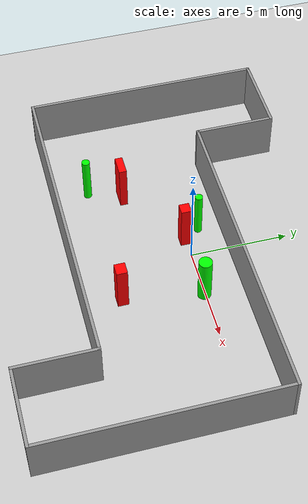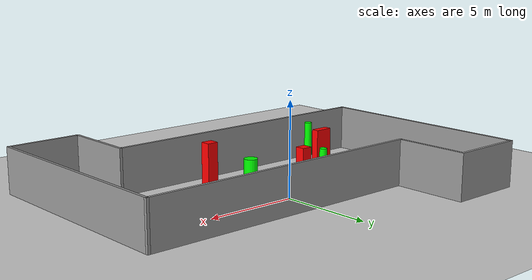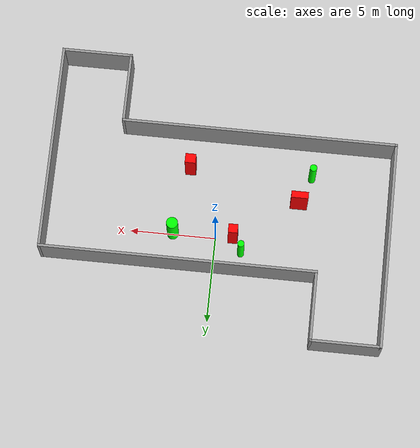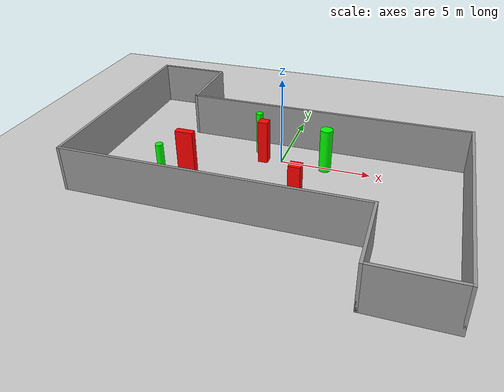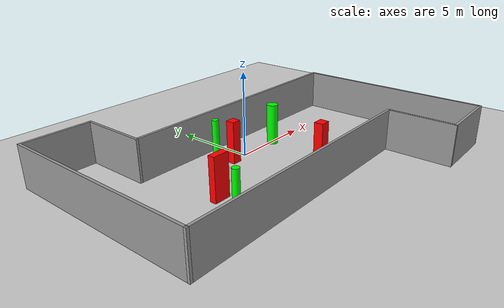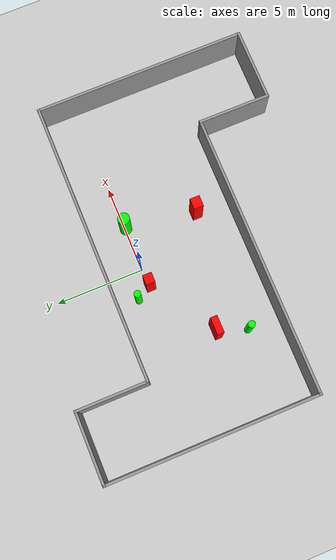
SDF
<sdf version="1.7">
 <world name="default">
  <light name="sun" type="directional">
   <pose>0 0 10 0 -0 0</pose>
   <diffuse>0.8 0.8 0.8 1</diffuse>
   <specular>0.2 0.2 0.2 1</specular>
   <attenuation>
    <range>1000</range>
    <constant>0.9</constant>
    <linear>0.01</linear>
    <quadratic>0.001</quadratic>
   </attenuation>
   <direction>-0.5 0.1 -0.9</direction>
   <spot><inner_angle>0</inner_angle><outer_angle>0</outer_angle><falloff>0</falloff></spot>
  </light>
  <model name="ground_plane">
   <static>1</static>
   <link name="link">
    <collision name="collision">
     <geometry><plane><normal>0 0 1</normal><size>100 100</size></plane></geometry>
     <surface>
      <contact><collide_bitmask>65535</collide_bitmask></contact>
      <friction><ode><mu>100</mu><mu2>50</mu2></ode></friction>
     </surface>
    </collision>
    <visual name="visual">
     <cast_shadows>0</cast_shadows>
     <geometry><plane><normal>0 0 1</normal><size>100 100</size></plane></geometry>
     <material>
      <script><uri>file://media/materials/scripts/gazebo.material</uri><name>Gazebo/Grey</name></script>
     </material>
    </visual>
   </link>
  </model>
  <gravity>0 0 -9.8</gravity>
  <magnetic_field>6e-06 2.3e-05 -4.2e-05</magnetic_field>
  <atmosphere type="adiabatic"/>
  <physics type="ode">
   <max_step_size>0.001</max_step_size>
   <real_time_factor>1</real_time_factor>
   <real_time_update_rate>1000</real_time_update_rate>
  </physics>
  <scene><ambient>0.4 0.4 0.4 1</ambient><background>0.7 0.7 0.7 1</background><shadows>1</shadows></scene>
  <spherical_coordinates>
   <surface_model>EARTH_WGS84</surface_model>
   <latitude_deg>0</latitude_deg>
   <longitude_deg>0</longitude_deg>
   <elevation>0</elevation>
   <heading_deg>0</heading_deg>
  </spherical_coordinates>
  <model name="my_base_walls">
   <link name="Wall_13">
    <collision name="Wall_13_Collision">
     <geometry><box><size>12.15 0.15 2.5</size></box></geometry>
     <pose>0 0 1.25 0 -0 0</pose>
    </collision>
    <visual name="Wall_13_Visual">
     <pose>0 0 1.25 0 -0 0</pose>
     <geometry><box><size>12.15 0.15 2.5</size></box></geometry>
     <material>
      <script><uri>file://media/materials/scripts/gazebo.material</uri><name>Gazebo/Grey</name></script>
      <ambient>1 1 1 1</ambient>
     </material>
     <meta><layer>0</layer></meta>
    </visual>
    <pose>10 -2 0 0 -0 1.5708</pose>
   </link>
   <link name="Wall_15">
    <collision name="Wall_15_Collision">
     <geometry><box><size>16.15 0.15 2.5</size></box></geometry>
     <pose>0 0 1.25 0 -0 0</pose>
    </collision>
    <visual name="Wall_15_Visual">
     <pose>0 0 1.25 0 -0 0</pose>
     <geometry><box><size>16.15 0.15 2.5</size></box></geometry>
     <material>
      <script><uri>file://media/materials/scripts/gazebo.material</uri><name>Gazebo/Grey</name></script>
      <ambient>1 1 1 1</ambient>
     </material>
     <meta><layer>0</layer></meta>
    </visual>
    <pose>2 4 0 0 -0 3.14159</pose>
   </link>
   <link name="Wall_17">
    <collision name="Wall_17_Collision">
     <geometry><box><size>4.15 0.15 2.5</size></box></geometry>
     <pose>0 0 1.25 0 -0 0</pose>
    </collision>
    <visual name="Wall_17_Visual">
     <pose>0 0 1.25 0 -0 0</pose>
     <geometry><box><size>4.15 0.15 2.5</size></box></geometry>
     <material>
      <script><uri>file://media/materials/scripts/gazebo.material</uri><name>Gazebo/Grey</name></script>
      <ambient>1 1 1 1</ambient>
     </material>
     <meta><layer>0</layer></meta>
    </visual>
    <pose>6 -6 0 0 -0 -1.5708</pose>
   </link>
   <link name="Wall_19">
    <collision name="Wall_19_Collision">
     <geometry><box><size>12.15 0.15 2.5</size></box></geometry>
     <pose>0 0 1.25 0 -0 0</pose>
    </collision>
    <visual name="Wall_19_Visual">
     <pose>0 0 1.25 0 -0 0</pose>
     <geometry><box><size>12.15 0.15 2.5</size></box></geometry>
     <material>
      <script><uri>file://media/materials/scripts/gazebo.material</uri><name>Gazebo/Grey</name></script>
      <ambient>1 1 1 1</ambient>
     </material>
     <meta><layer>0</layer></meta>
    </visual>
    <pose>-10 2 0 0 -0 1.5708</pose>
   </link>
   <link name="Wall_21">
    <collision name="Wall_21_Collision">
     <geometry><box><size>4.15 0.15 2.5</size></box></geometry>
     <pose>0 0 1.25 0 -0 0</pose>
    </collision>
    <visual name="Wall_21_Visual">
     <pose>0 0 1.25 0 -0 0</pose>
     <geometry><box><size>4.15 0.15 2.5</size></box></geometry>
     <material>
      <script><uri>file://media/materials/scripts/gazebo.material</uri><name>Gazebo/Grey</name></script>
      <ambient>1 1 1 1</ambient>
     </material>
     <meta><layer>0</layer></meta>
    </visual>
    <pose>-8 8 0 0 -0 0</pose>
   </link>
   <link name="Wall_23">
    <collision name="Wall_23_Collision">
     <geometry><box><size>4.15 0.15 2.5</size></box></geometry>
     <pose>0 0 1.25 0 -0 0</pose>
    </collision>
    <visual name="Wall_23_Visual">
     <pose>0 0 1.25 0 -0 0</pose>
     <geometry><box><size>4.15 0.15 2.5</size></box></geometry>
     <material>
      <script><uri>file://media/materials/scripts/gazebo.material</uri><name>Gazebo/Grey</name></script>
      <ambient>1 1 1 1</ambient>
     </material>
     <meta><layer>0</layer></meta>
    </visual>
    <pose>-6 6 0 0 -0 -1.5708</pose>
   </link>
   <link name="Wall_25">
    <collision name="Wall_25_Collision">
     <geometry><box><size>4.15 0.15 2.5</size></box></geometry>
     <pose>0 0 1.25 0 -0 0</pose>
    </collision>
    <visual name="Wall_25_Visual">
     <pose>0 0 1.25 0 -0 0</pose>
     <geometry><box><size>4.15 0.15 2.5</size></box></geometry>
     <material>
      <script><uri>file://media/materials/scripts/gazebo.material</uri><name>Gazebo/Grey</name></script>
      <ambient>1 1 1 1</ambient>
     </material>
     <meta><layer>0</layer></meta>
    </visual>
    <pose>8 -8 0 0 -0 0</pose>
   </link>
   <link name="Wall_9">
    <collision name="Wall_9_Collision">
     <geometry><box><size>16.15 0.15 2.5</size></box></geometry>
     <pose>0 0 1.25 0 -0 0</pose>
    </collision>
    <visual name="Wall_9_Visual">
     <pose>0 0 1.25 0 -0 0</pose>
     <geometry><box><size>16.15 0.15 2.5</size></box></geometry>
     <material>
      <script><uri>file://media/materials/scripts/gazebo.material</uri><name>Gazebo/Grey</name></script>
      <ambient>1 1 1 1</ambient>
     </material>
     <meta><layer>0</layer></meta>
    </visual>
    <pose>-2 -4 0 0 -0 3.14159</pose>
   </link>
   <static>1</static>
   <pose>-0 -2 0 0 -0 0</pose>
  </model>
  <model name="cylinder1">
   <static>1</static>
   <link name="link">
    <inertial>
     <mass>1</mass>
     <inertia><ixx>0.5</ixx><ixy>0</ixy><ixz>0</ixz><iyy>0.5</iyy><iyz>0</iyz><izz>1</izz></inertia>
    </inertial>
    <collision name="collision">
     <geometry><cylinder><radius>0.19350005630960615</radius><length>2.5</length></cylinder></geometry>
    </collision>
    <visual name="visual">
     <geometry><cylinder><radius>0.19350005630960615</radius><length>2.5</length></cylinder></geometry>
     <material>
      <ambient>0 1 0 1</ambient>
      <diffuse>0 1 0 1</diffuse>
      <specular>0.1 0.1 0.1 1</specular>
      <emissive>0 0 0 0</emissive>
     </material>
    </visual>
   </link>
   <pose>-1.55429777467978 0.7826158822204423 1.25 0 0 0</pose>
  </model>
  <model name="cylinder2">
   <static>1</static>
   <link name="link">
    <inertial>
     <mass>1</mass>
     <inertia><ixx>0.5</ixx><ixy>0</ixy><ixz>0</ixz><iyy>0.5</iyy><iyz>0</iyz><izz>1</izz></inertia>
    </inertial>
    <collision name="collision">
     <geometry><cylinder><radius>0.3370850820572418</radius><length>2.5</length></cylinder></geometry>
    </collision>
    <visual name="visual">
     <geometry><cylinder><radius>0.3370850820572418</radius><length>2.5</length></cylinder></geometry>
     <material>
      <ambient>0 1 0 1</ambient>
      <diffuse>0 1 0 1</diffuse>
      <specular>0.1 0.1 0.1 1</specular>
      <emissive>0 0 0 0</emissive>
     </material>
    </visual>
   </link>
   <pose>2.513342264000558 -0.05358574519133086 1.25 0 0 0</pose>
  </model>
  <model name="cylinder3">
   <static>1</static>
   <link name="link">
    <inertial>
     <mass>1</mass>
     <inertia><ixx>0.5</ixx><ixy>0</ixy><ixz>0</ixz><iyy>0.5</iyy><iyz>0</iyz><izz>1</izz></inertia>
    </inertial>
    <collision name="collision">
     <geometry><cylinder><radius>0.20331588980605922</radius><length>2.5</length></cylinder></geometry>
    </collision>
    <visual name="visual">
     <geometry><cylinder><radius>0.20331588980605922</radius><length>2.5</length></cylinder></geometry>
     <material>
      <ambient>0 1 0 1</ambient>
      <diffuse>0 1 0 1</diffuse>
      <specular>0.1 0.1 0.1 1</specular>
      <emissive>0 0 0 0</emissive>
     </material>
    </visual>
   </link>
   <pose>-5.320090047042754 -4.149427014578547 1.25 0 0 0</pose>
  </model>
  <model name="box1">
   <static>1</static>
   <link name="link">
    <inertial>
     <mass>1</mass>
     <inertia><ixx>0.083</ixx><ixy>0</ixy><ixz>0</ixz><iyy>0.083</iyy><iyz>0</iyz><izz>0.083</izz></inertia>
    </inertial>
    <collision name="collision">
     <geometry><box><size>0.9927245635497559 0.39048039693523695 2.5</size></box></geometry>
    </collision>
    <visual name="visual">
     <geometry><box><size>0.9927245635497559 0.39048039693523695 2.5</size></box></geometry>
     <material>
      <ambient>1 0 0 1</ambient>
      <diffuse>1 0 0 1</diffuse>
      <specular>0.1 0.1 0.1 1</specular>
      <emissive>0 0 0 0</emissive>
     </material>
    </visual>
    <sensor name="my_contact" type="contact">
     <contact><collision>box_collision</collision><topic>__default_topic__</topic></contact>
    </sensor>
   </link>
   <pose>-4.679929577949557 -2.4639828827415045 1.25 0 0 0</pose>
  </model>
  <model name="box2">
   <static>1</static>
   <link name="link">
    <inertial>
     <mass>1</mass>
     <inertia><ixx>0.083</ixx><ixy>0</ixy><ixz>0</ixz><iyy>0.083</iyy><iyz>0</iyz><izz>0.083</izz></inertia>
    </inertial>
    <collision name="collision">
     <geometry><box><size>0.6186424190751225 0.5465164378299218 2.5</size></box></geometry>
    </collision>
    <visual name="visual">
     <geometry><box><size>0.6186424190751225 0.5465164378299218 2.5</size></box></geometry>
     <material>
      <ambient>1 0 0 1</ambient>
      <diffuse>1 0 0 1</diffuse>
      <specular>0.1 0.1 0.1 1</specular>
      <emissive>0 0 0 0</emissive>
     </material>
    </visual>
    <sensor name="my_contact" type="contact">
     <contact><collision>box_collision</collision><topic>__default_topic__</topic></contact>
    </sensor>
   </link>
   <pose>1.853252974739954 -4.030663910705804 1.25 0 0 0</pose>
  </model>
  <model name="box3">
   <static>1</static>
   <link name="link">
    <inertial>
     <mass>1</mass>
     <inertia><ixx>0.083</ixx><ixy>0</ixy><ixz>0</ixz><iyy>0.083</iyy><iyz>0</iyz><izz>0.083</izz></inertia>
    </inertial>
    <collision name="collision">
     <geometry><box><size>0.5530283597784922 0.5151858400826314 2.5</size></box></geometry>
    </collision>
    <visual name="visual">
     <geometry><box><size>0.5530283597784922 0.5151858400826314 2.5</size></box></geometry>
     <material>
      <ambient>1 0 0 1</ambient>
      <diffuse>1 0 0 1</diffuse>
      <specular>0.1 0.1 0.1 1</specular>
      <emissive>0 0 0 0</emissive>
     </material>
    </visual>
    <sensor name="my_contact" type="contact">
     <contact><collision>box_collision</collision><topic>__default_topic__</topic></contact>
    </sensor>
   </link>
   <pose>-1.0226794730626452 -0.07773192743816804 1.25 0 0 0</pose>
  </model>
 </world>
</sdf>
